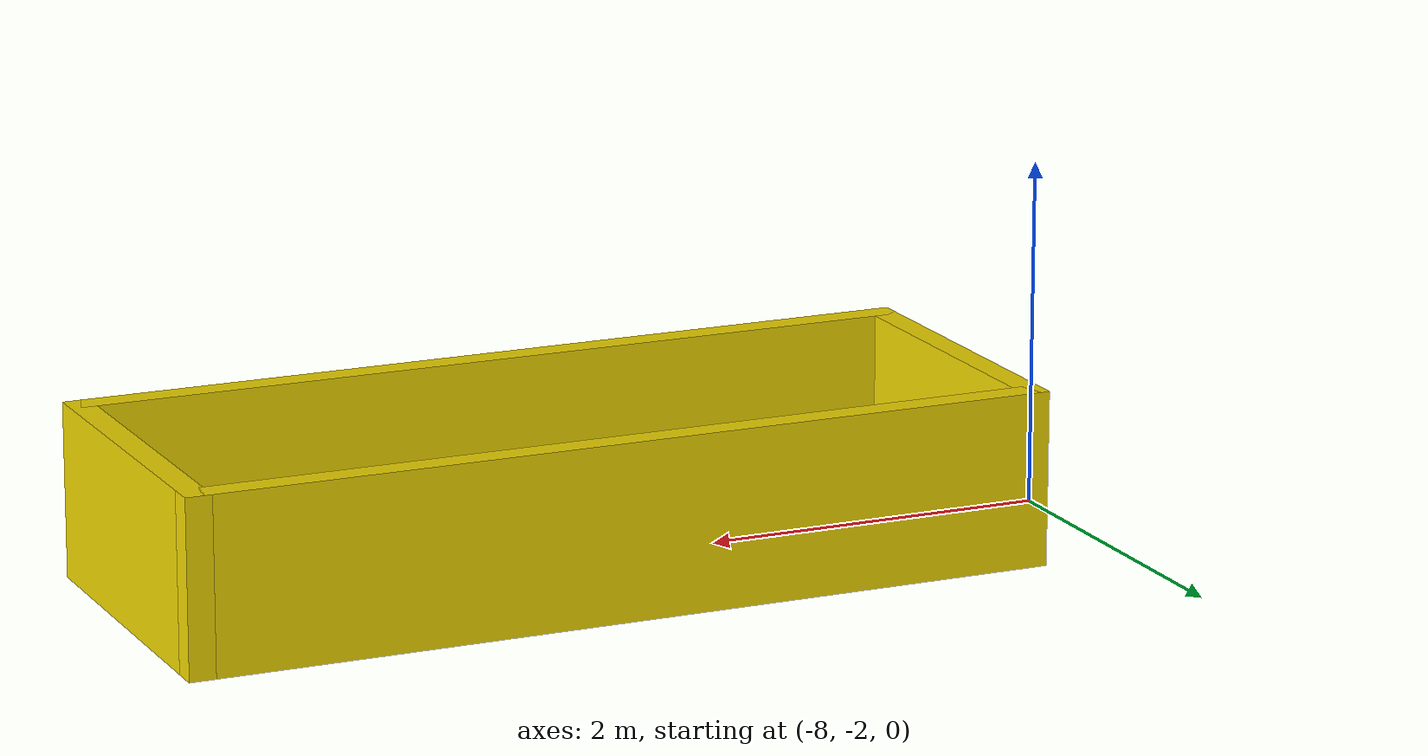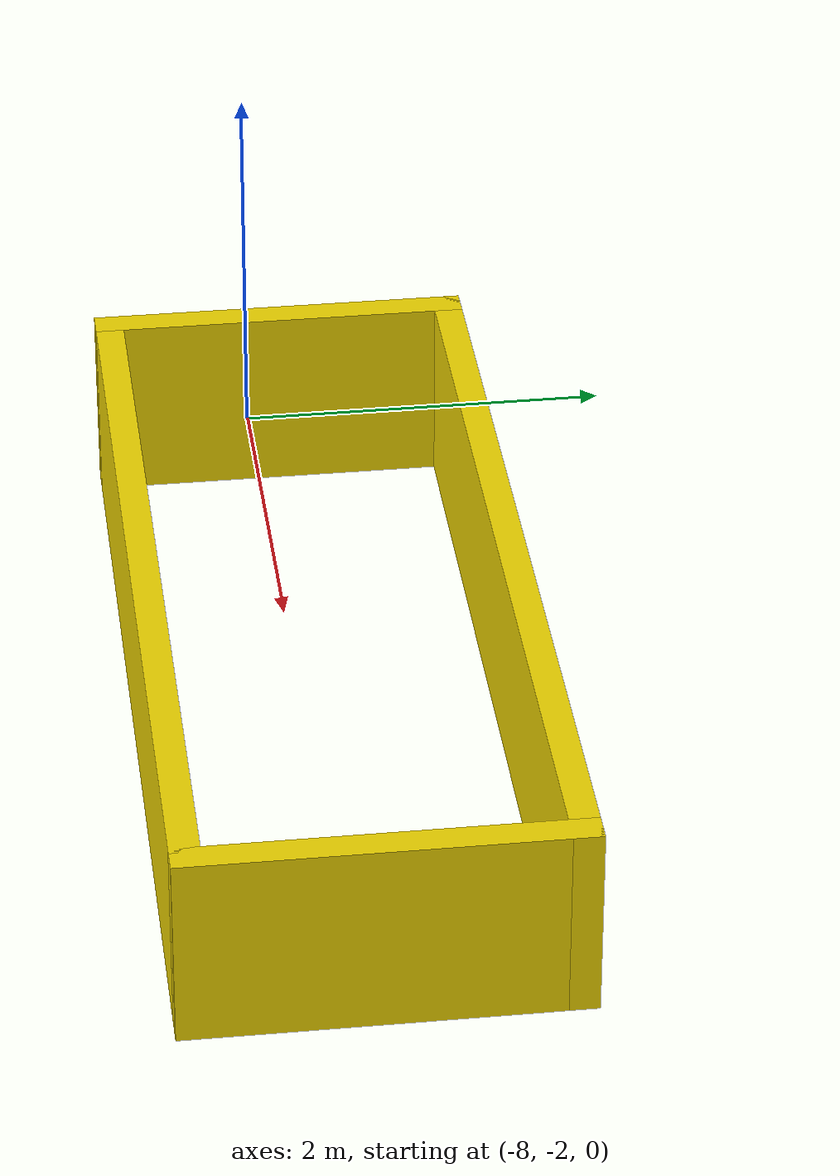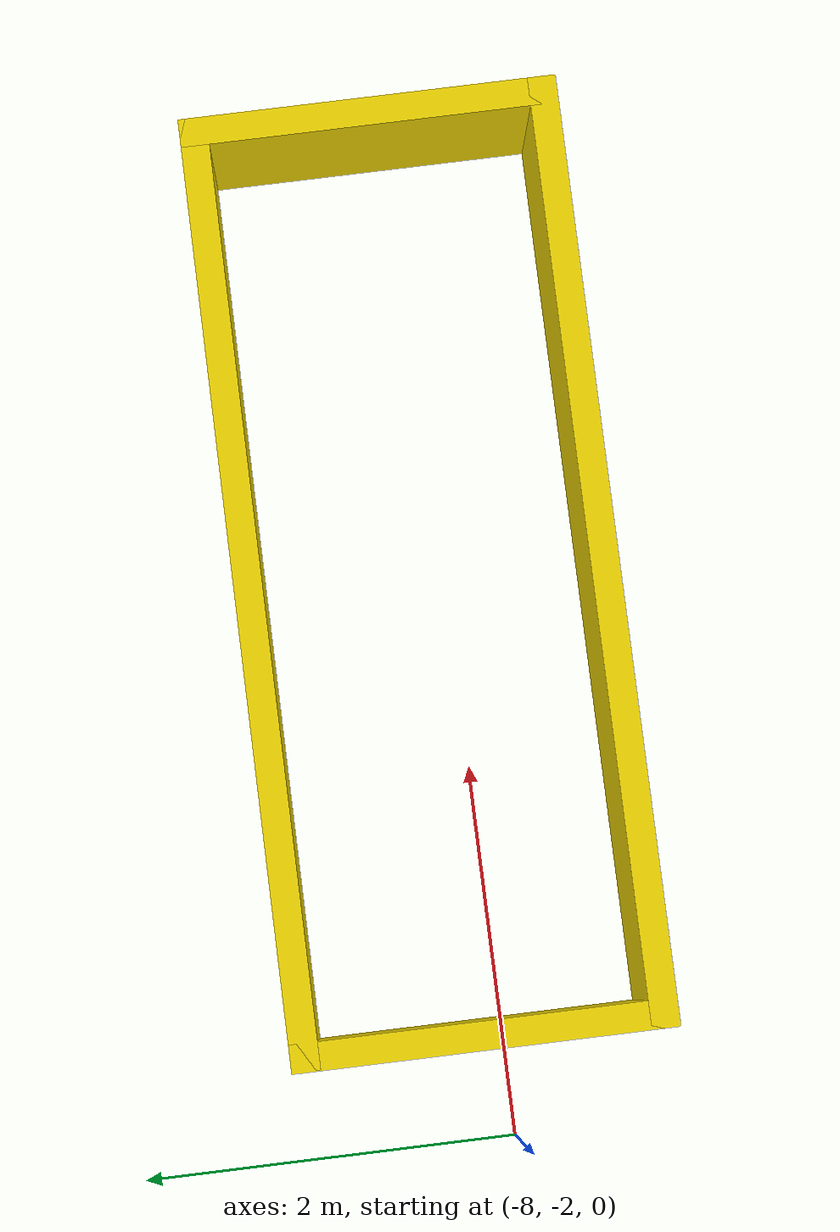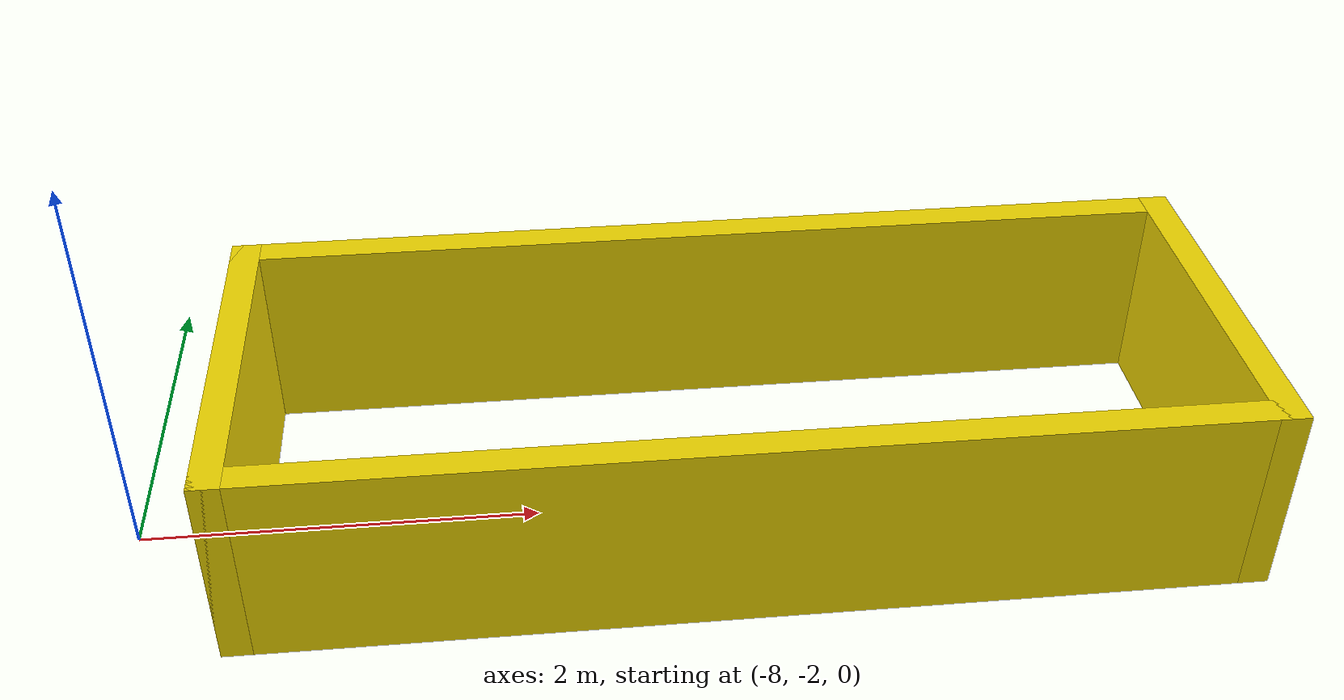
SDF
<?xml version='1.0'?>
<sdf version='1.7'>
  <model name='helipad_fence_5by2'>
    <pose>-3.753 -1.435 0 0 -0 0</pose>
    <link name='Wall_16'>
      <collision name='Wall_16_Collision'>
        <geometry>
          <box>
            <size>5.012 0.15 1</size>
          </box>
        </geometry>
        <pose>0 0 0.5 0 -0 0</pose>
      </collision>
      <visual name='Wall_16_Visual'>
        <pose>0 0 0.5 0 -0 0</pose>
        <geometry>
          <box>
            <size>5.012 0.15 1</size>
          </box>
        </geometry>
        <material>
          <script>
            <uri>file://media/materials/scripts/gazebo.material</uri>
            <name>Gazebo/Grey</name>
          </script>
          <ambient>0.929412 0.831373 0 1</ambient>
        </material>
        <meta>
          <layer>0</layer>
        </meta>
      </visual>
      <pose>-1.247 -1.36 0 0 -0 0</pose>
    </link>
    <link name='Wall_18'>
      <collision name='Wall_18_Collision'>
        <geometry>
          <box>
            <size>2 0.15 1</size>
          </box>
        </geometry>
        <pose>0 0 0.5 0 -0 0</pose>
      </collision>
      <visual name='Wall_18_Visual'>
        <pose>0 0 0.5 0 -0 0</pose>
        <geometry>
          <box>
            <size>2 0.15 1</size>
          </box>
        </geometry>
        <material>
          <script>
            <uri>file://media/materials/scripts/gazebo.material</uri>
            <name>Gazebo/Grey</name>
          </script>
          <ambient>0.929412 0.831373 0 1</ambient>
        </material>
        <meta>
          <layer>0</layer>
        </meta>
      </visual>
      <pose>1.184 -0.435 0 0 -0 1.5708</pose>
    </link>
    <link name='Wall_19'>
      <collision name='Wall_19_Collision'>
        <geometry>
          <box>
            <size>5.012 0.15 1</size>
          </box>
        </geometry>
        <pose>0 0 0.5 0 -0 0</pose>
      </collision>
      <visual name='Wall_19_Visual'>
        <pose>0 0 0.5 0 -0 0</pose>
        <geometry>
          <box>
            <size>5.012 0.15 1</size>
          </box>
        </geometry>
        <material>
          <script>
            <uri>file://media/materials/scripts/gazebo.material</uri>
            <name>Gazebo/Grey</name>
          </script>
          <ambient>0.929412 0.831373 0 1</ambient>
        </material>
        <meta>
          <layer>0</layer>
        </meta>
      </visual>
      <pose>-1.247 0.49 0 0 -0 3.14159</pose>
    </link>
    <link name='Wall_20'>
      <collision name='Wall_20_Collision'>
        <geometry>
          <box>
            <size>2 0.15 1</size>
          </box>
        </geometry>
        <pose>0 0 0.5 0 -0 0</pose>
      </collision>
      <visual name='Wall_20_Visual'>
        <pose>0 0 0.5 0 -0 0</pose>
        <geometry>
          <box>
            <size>2 0.15 1</size>
          </box>
        </geometry>
        <material>
          <script>
            <uri>file://media/materials/scripts/gazebo.material</uri>
            <name>Gazebo/Grey</name>
          </script>
          <ambient>0.929412 0.831373 0 1</ambient>
        </material>
        <meta>
          <layer>0</layer>
        </meta>
      </visual>
      <pose>-3.678 -0.435 0 0 -0 -1.5708</pose>
    </link>
    <static>1</static>
  </model>
</sdf>
